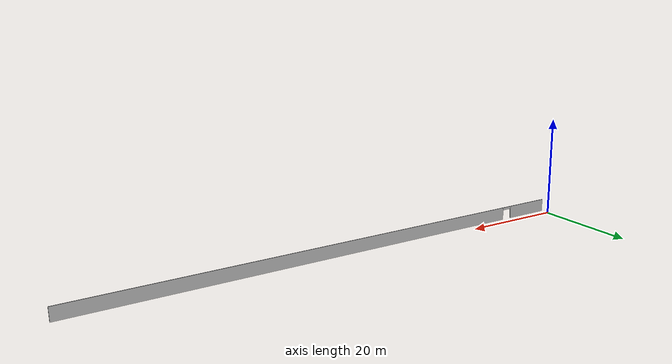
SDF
<?xml version='1.0'?>
<sdf version='1.6'>
  <model name='Untitled'>
    <pose frame=''>50 -2 0 0 -0 0</pose>
    <link name='Wall_0'>
	    <pose frame=''>0 0 0 0 -0 0</pose>
      <visual name='Wall_0_Visual_0'>
        <pose frame=''>-45.5375 0 1.25 0 -0 0</pose>
        <geometry>
          <box>
            <size>9.075 0.15 2.5</size>
          </box>
        </geometry>
        <material>
          <script>
            <uri>file://media/materials/scripts/gazebo.material</uri>
            <name>Gazebo/Grey</name>
          </script>
          <ambient>1 1 1 1</ambient>
        </material>
        <meta>
          <layer>0</layer>
        </meta>
      </visual>
      <collision name='Wall_0_Collision_0'>
        <geometry>
          <box>
            <size>9.075 0.15 2.5</size>
          </box>
        </geometry>
        <pose frame=''>-45.5375 0 1.25 0 -0 0</pose>
      </collision>
      <visual name='Wall_0_Visual_1'>
        <pose frame=''>5.5375 0 1.25 0 -0 0</pose>
        <geometry>
          <box>
            <size>89.075 0.15 2.5</size>
          </box>
        </geometry>
        <material>
          <script>
            <uri>file://media/materials/scripts/gazebo.material</uri>
            <name>Gazebo/Grey</name>
          </script>
          <ambient>1 1 1 1</ambient>
        </material>
        <meta>
          <layer>0</layer>
        </meta>
      </visual>
      <collision name='Wall_0_Collision_1'>
        <geometry>
          <box>
            <size>89.075 0.15 2.5</size>
          </box>
        </geometry>
        <pose frame=''>5.5375 0 1.25 0 -0 0</pose>
      </collision>
      <visual name='Wall_0_Visual_2'>
        <pose frame=''>-40 0 2.25 0 -0 0</pose>
        <geometry>
          <box>
            <size>2 0.15 0.5</size>
          </box>
        </geometry>
        <material>
          <script>
            <uri>file://media/materials/scripts/gazebo.material</uri>
            <name>Gazebo/Grey</name>
          </script>
          <ambient>1 1 1 1</ambient>
        </material>
        <meta>
          <layer>0</layer>
        </meta>
      </visual>
      <collision name='Wall_0_Collision_2'>
        <geometry>
          <box>
            <size>2 0.15 0.5</size>
          </box>
        </geometry>
        <pose frame=''>-40 0 2.25 0 -0 0</pose>
      </collision>
    </link>
    <static>1</static>
  </model>
</sdf>
